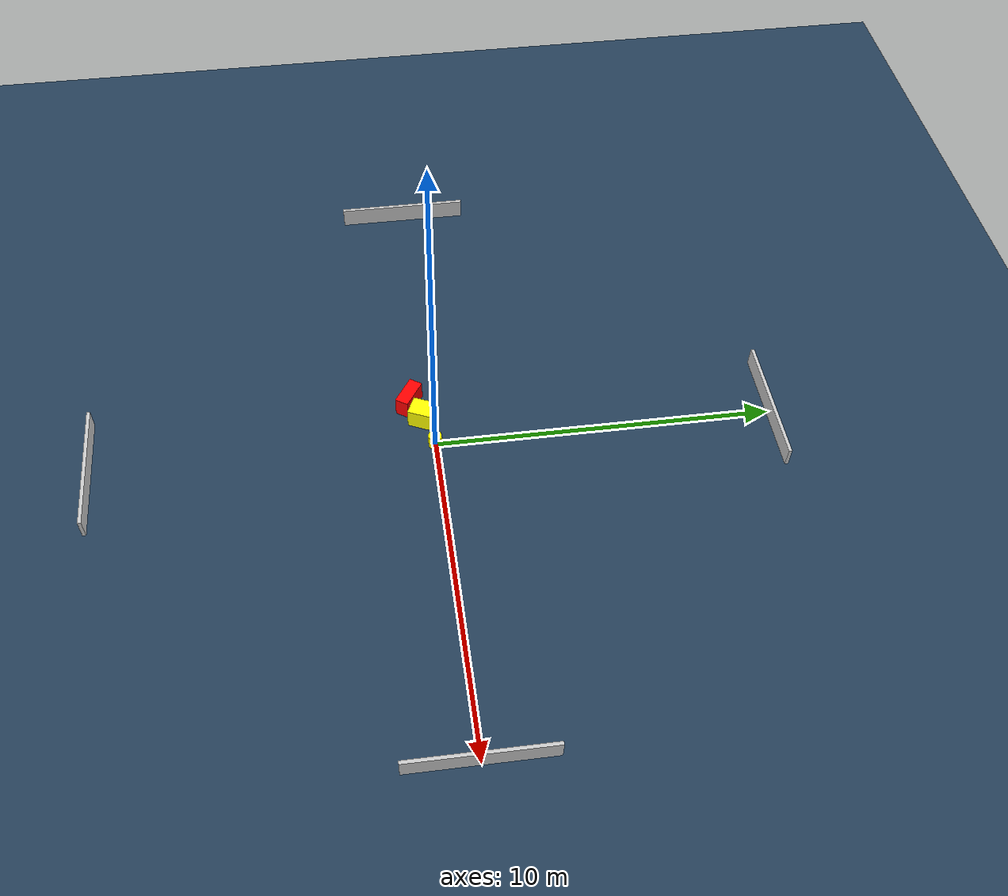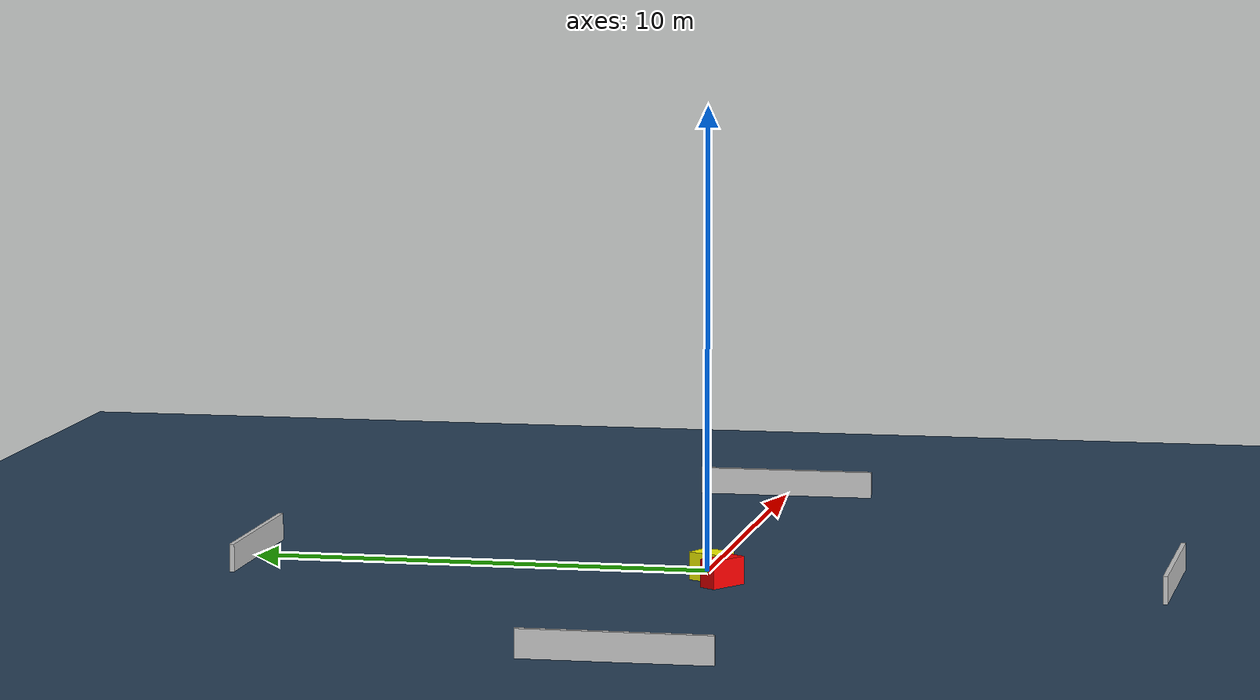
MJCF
<?xml version="1.0" ?>
<mujoco model="generated_environment">
  <option timestep="0.01" integrator="RK4" cone="elliptic"/>
  <default>
    <geom density="1"/>
  </default>
  <asset>
    <texture builtin="gradient" height="3072" name="skybox" rgb1="0.3 0.5 0.7" rgb2="0 0 0" type="skybox" width="512"/>
    <texture builtin="checker" height="300" name="groundplane" rgb1="0.2 0.3 0.4" rgb2="0.1 0.2 0.3" type="2d" width="300"/>
    <material name="groundplane" reflectance="0.2" texrepeat="5 5" texture="groundplane"/>
  </asset>
  <worldbody>
    <light dir="0 0 -1" directional="true" pos="0 0 1.5"/>
    <geom condim="3" friction="0.5 0.005 0.001" material="groundplane" name="floor" pos="0 0 0" size="0 0 0.05" type="plane"/>
    <body name="walls">
      <geom name="wall_1" condim="4" pos="-10.0 0.0 0.3" rgba="0.800000011920929 0.800000011920929 0.800000011920929 1.0" size="0.05 2.0 0.3" type="box"/>
      <geom name="wall_2" condim="4" pos="10.0 0.0 0.3" rgba="0.800000011920929 0.800000011920929 0.800000011920929 1.0" size="0.05 2.0 0.3" type="box"/>
      <geom name="wall_3" condim="4" pos="0.0 -10.0 0.3" rgba="0.800000011920929 0.800000011920929 0.800000011920929 1.0" size="2.0 0.05 0.3" type="box"/>
      <geom name="wall_4" condim="4" pos="0.0 10.0 0.3" rgba="0.800000011920929 0.800000011920929 0.800000011920929 1.0" size="2.0 0.05 0.3" type="box"/>
    </body>
    <body name="robot">
      <joint name="joint_x" type="slide" pos="0 0 0" axis="1 0 0"/>
      <joint name="joint_y" type="slide" pos="0 0 0" axis="0 1 0"/>
      <geom name="robot" type="cylinder" pos="0.0 0.0 0.2" size="0.2 0.2 0.0" mass="5.0" friction="1.0 0.005 0.0001" condim="4" rgba="1.0 1.0 0.0 1.0"/>
    </body>
    <body name="obstacle_1_movable">
      <geom name="obstacle_1_movable" condim="4" pos="-0.9467340724288501 -0.2570549728060347 0.3" euler="0 0 155.16502079739158" friction="0.0 0.005 0.001" rgba="1.0 1.0 0.0 1.0" size="0.2958869166447899 0.37430812218315535 0.3" type="box" mass="0.1"/>
      <joint type="free"/>
    </body>
    <body name="obstacle_2_static">
      <geom name="obstacle_2_static" condim="4" pos="-1.6150336528254918 -0.605494916316203 0.3" euler="0 0 146.48048606544424" friction="0.0 0.005 0.001" rgba="1.0 0.0 0.0 1.0" size="0.4603984905549967 0.20212976136452845 0.3" type="box"/>
    </body>
  </worldbody>
  <actuator>
    <motor name="actuator_x" joint="joint_x" gear="1" ctrlrange="-1 1"/>
    <motor name="actuator_y" joint="joint_y" gear="1" ctrlrange="-1 1"/>
  </actuator>
</mujoco>
